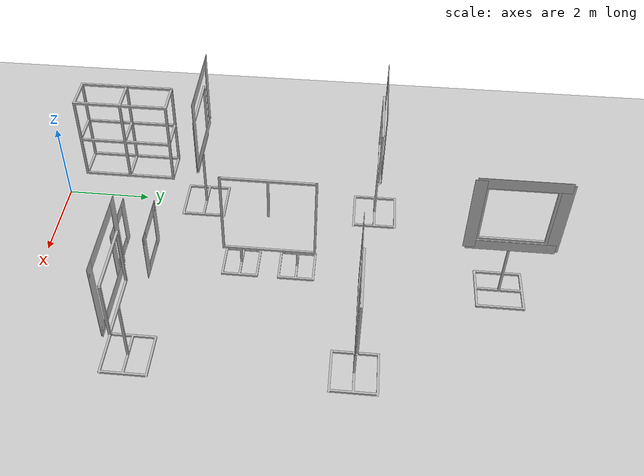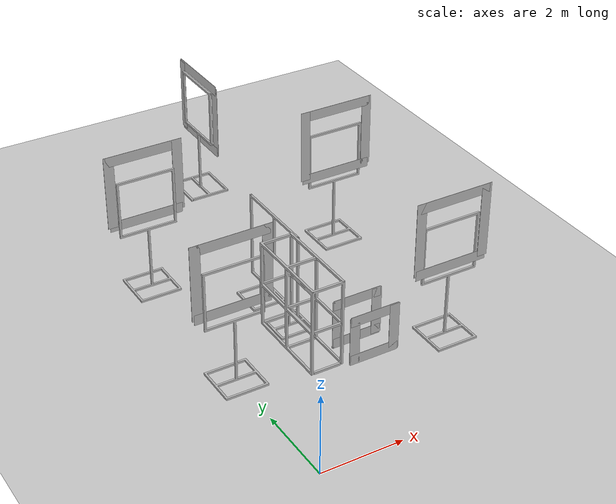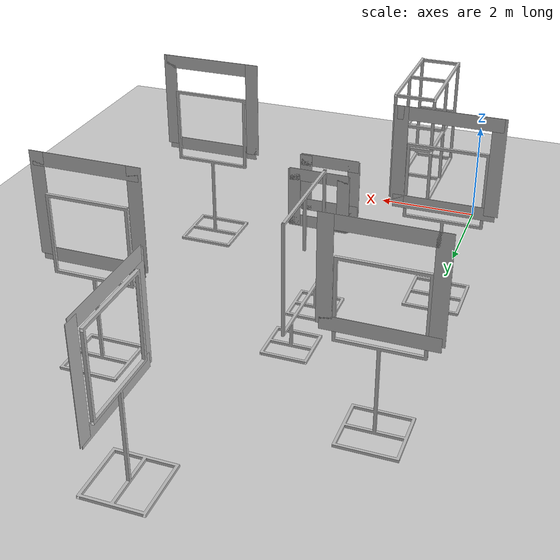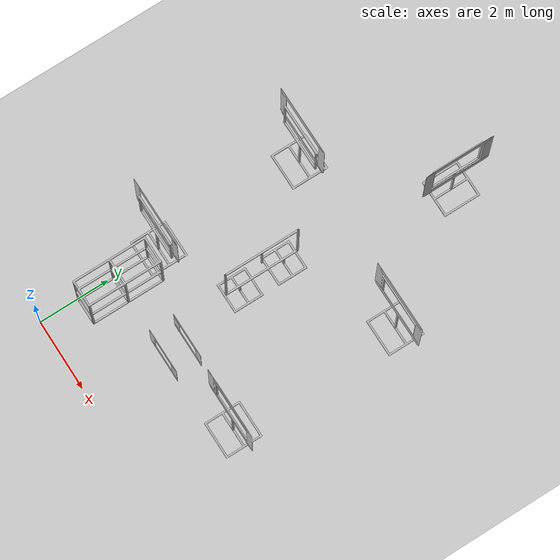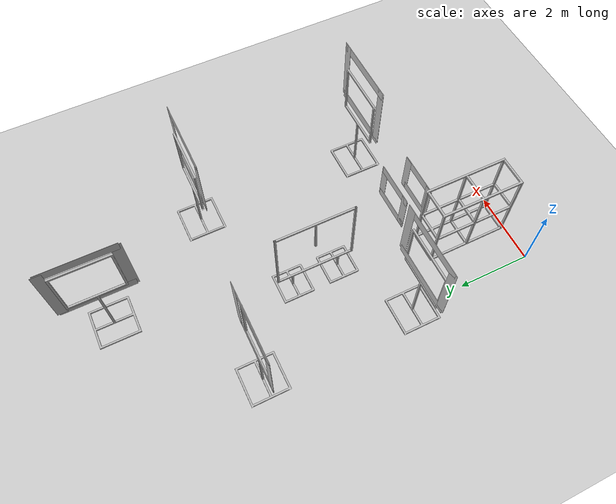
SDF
<sdf version="1.6">
 <world name="default">
  <light name="sun" type="directional">
   <pose>0 0 10 0 -0 0</pose>
   <diffuse>0.8 0.8 0.8 1</diffuse>
   <specular>0.1 0.1 0.1 1</specular>
   <attenuation>
    <range>1000</range>
    <constant>0.9</constant>
    <linear>0.01</linear>
    <quadratic>0.001</quadratic>
   </attenuation>
   <direction>-0.5 0.5 -1</direction>
  </light>
  <model name="ground_plane">
   <static>1</static>
   <link name="link">
    <collision name="collision">
     <geometry><plane><normal>0 0 1</normal><size>100 100</size></plane></geometry>
     <surface><friction><ode><mu>100</mu><mu2>50</mu2></ode></friction></surface>
    </collision>
    <visual name="visual">
     <cast_shadows>0</cast_shadows>
     <geometry><plane><normal>0 0 1</normal><size>100 100</size></plane></geometry>
     <material>
      <script><uri>file://media/materials/scripts/gazebo.material</uri><name>Gazebo/Grey</name></script>
     </material>
    </visual>
   </link>
  </model>
  <gravity>0 0 -9.8</gravity>
  <magnetic_field>6e-06 2.3e-05 -4.2e-05</magnetic_field>
  <atmosphere type="adiabatic"/>
  <physics name="default_physics" default="0" type="ode">
   <max_step_size>0.001</max_step_size>
   <real_time_factor>1</real_time_factor>
   <real_time_update_rate>1000</real_time_update_rate>
  </physics>
  <scene><ambient>0.4 0.4 0.4 1</ambient><background>0.7 0.7 0.7 1</background><shadows>1</shadows></scene>
  <spherical_coordinates>
   <surface_model>EARTH_WGS84</surface_model>
   <latitude_deg>51.9906361</latitude_deg>
   <longitude_deg>4.3767874</longitude_deg>
   <elevation>45.110</elevation>
   <heading_deg>180</heading_deg>
  </spherical_coordinates>
  <model name="paper_back0">
   <pose>0 3.55 1.9 0 0 0</pose>
   <static>true</static>
   <link name="link">
    <collision name="collision"><geometry><box><size>0.1 0.01 0.1</size></box></geometry></collision>
    <visual name="visual"><geometry><box><size>1.85 0.01 0.25</size></box></geometry></visual>
   </link>
  </model>
  <model name="paper_back1">
   <pose>0.85 3.55 2.8 0 1.57 0</pose>
   <static>true</static>
   <link name="link">
    <collision name="collision"><geometry><box><size>0.1 0.01 0.1</size></box></geometry></collision>
    <visual name="visual"><geometry><box><size>1.85 0.01 0.25</size></box></geometry></visual>
   </link>
  </model>
  <model name="paper_back2">
   <pose>-0.85 3.55 2.8 0 1.57 0</pose>
   <static>true</static>
   <link name="link">
    <collision name="collision"><geometry><box><size>0.1 0.01 0.1</size></box></geometry></collision>
    <visual name="visual"><geometry><box><size>1.85 0.01 0.25</size></box></geometry></visual>
   </link>
  </model>
  <model name="paper_back3">
   <pose>0 3.55 3.6 0 0 0</pose>
   <static>true</static>
   <link name="link">
    <collision name="collision"><geometry><box><size>0.1 0.01 0.1</size></box></geometry></collision>
    <visual name="visual"><geometry><box><size>1.85 0.01 0.25</size></box></geometry></visual>
   </link>
  </model>
  <model name="paper_back0_2">
   <pose>0 7.75 1.9 0 0 0</pose>
   <static>true</static>
   <link name="link">
    <collision name="collision"><geometry><box><size>0.1 0.01 0.1</size></box></geometry></collision>
    <visual name="visual"><geometry><box><size>1.85 0.01 0.25</size></box></geometry></visual>
   </link>
  </model>
  <model name="paper_back1_2">
   <pose>0.85 7.75 2.8 0 1.57 0</pose>
   <static>true</static>
   <link name="link">
    <collision name="collision"><geometry><box><size>0.1 0.01 0.1</size></box></geometry></collision>
    <visual name="visual"><geometry><box><size>1.85 0.01 0.25</size></box></geometry></visual>
   </link>
  </model>
  <model name="paper_back2_2">
   <pose>-0.85 7.75 2.8 0 1.57 0</pose>
   <static>true</static>
   <link name="link">
    <collision name="collision"><geometry><box><size>0.1 0.01 0.1</size></box></geometry></collision>
    <visual name="visual"><geometry><box><size>1.85 0.01 0.25</size></box></geometry></visual>
   </link>
  </model>
  <model name="paper_back3_2">
   <pose>0 7.75 3.6 0 0 0</pose>
   <static>true</static>
   <link name="link">
    <collision name="collision"><geometry><box><size>0.1 0.01 0.1</size></box></geometry></collision>
    <visual name="visual"><geometry><box><size>1.85 0.01 0.25</size></box></geometry></visual>
   </link>
  </model>
  <model name="paper_back0_3">
   <pose>2.8 10.45 1.95 0 0 1.57</pose>
   <static>true</static>
   <link name="link">
    <collision name="collision"><geometry><box><size>0.1 0.01 0.1</size></box></geometry></collision>
    <visual name="visual"><geometry><box><size>1.85 0.01 0.25</size></box></geometry></visual>
   </link>
  </model>
  <model name="paper_back1_3">
   <pose>2.8 11.3 2.8 0 1.57 1.57</pose>
   <static>true</static>
   <link name="link">
    <collision name="collision"><geometry><box><size>0.1 0.01 0.1</size></box></geometry></collision>
    <visual name="visual"><geometry><box><size>1.85 0.01 0.25</size></box></geometry></visual>
   </link>
  </model>
  <model name="paper_back2_3">
   <pose>2.8 9.6 2.8 0 1.57 1.57</pose>
   <static>true</static>
   <link name="link">
    <collision name="collision"><geometry><box><size>0.1 0.01 0.1</size></box></geometry></collision>
    <visual name="visual"><geometry><box><size>1.85 0.01 0.25</size></box></geometry></visual>
   </link>
  </model>
  <model name="paper_back3_3">
   <pose>2.8 10.45 3.65 0 0 1.57</pose>
   <static>true</static>
   <link name="link">
    <collision name="collision"><geometry><box><size>0.1 0.01 0.1</size></box></geometry></collision>
    <visual name="visual"><geometry><box><size>1.85 0.01 0.25</size></box></geometry></visual>
   </link>
  </model>
  <model name="paper_back0_4">
   <pose>4.9 7.35 1.9 0 0 0</pose>
   <static>true</static>
   <link name="link">
    <collision name="collision"><geometry><box><size>0.1 0.01 0.1</size></box></geometry></collision>
    <visual name="visual"><geometry><box><size>1.85 0.01 0.25</size></box></geometry></visual>
   </link>
  </model>
  <model name="paper_back1_4">
   <pose>5.75 7.35 2.8 0 1.57 0</pose>
   <static>true</static>
   <link name="link">
    <collision name="collision"><geometry><box><size>0.1 0.01 0.1</size></box></geometry></collision>
    <visual name="visual"><geometry><box><size>1.85 0.01 0.25</size></box></geometry></visual>
   </link>
  </model>
  <model name="paper_back2_4">
   <pose>4.05 7.35 2.8 0 1.57 0</pose>
   <static>true</static>
   <link name="link">
    <collision name="collision"><geometry><box><size>0.1 0.01 0.1</size></box></geometry></collision>
    <visual name="visual"><geometry><box><size>1.85 0.01 0.25</size></box></geometry></visual>
   </link>
  </model>
  <model name="paper_back3_4">
   <pose>4.9 7.35 3.6 0 0 0</pose>
   <static>true</static>
   <link name="link">
    <collision name="collision"><geometry><box><size>0.1 0.01 0.1</size></box></geometry></collision>
    <visual name="visual"><geometry><box><size>1.85 0.01 0.25</size></box></geometry></visual>
   </link>
  </model>
  <model name="paper_back0_5">
   <pose>4.9 2.55 1.9 0 0 0</pose>
   <static>true</static>
   <link name="link">
    <collision name="collision"><geometry><box><size>0.1 0.01 0.1</size></box></geometry></collision>
    <visual name="visual"><geometry><box><size>1.85 0.01 0.25</size></box></geometry></visual>
   </link>
  </model>
  <model name="paper_back1_5">
   <pose>5.75 2.55 2.8 0 1.57 0</pose>
   <static>true</static>
   <link name="link">
    <collision name="collision"><geometry><box><size>0.1 0.01 0.1</size></box></geometry></collision>
    <visual name="visual"><geometry><box><size>1.85 0.01 0.25</size></box></geometry></visual>
   </link>
  </model>
  <model name="paper_back2_5">
   <pose>4.05 2.55 2.8 0 1.57 0</pose>
   <static>true</static>
   <link name="link">
    <collision name="collision"><geometry><box><size>0.1 0.01 0.1</size></box></geometry></collision>
    <visual name="visual"><geometry><box><size>1.85 0.01 0.25</size></box></geometry></visual>
   </link>
  </model>
  <model name="paper_back3_5">
   <pose>4.9 2.55 3.6 0 0 0</pose>
   <static>true</static>
   <link name="link">
    <collision name="collision"><geometry><box><size>0.1 0.01 0.1</size></box></geometry></collision>
    <visual name="visual"><geometry><box><size>1.85 0.01 0.25</size></box></geometry></visual>
   </link>
  </model>
  <model name="paper_back0_6">
   <pose>2.6 2.05 0.7 0 0 0</pose>
   <static>true</static>
   <link name="link">
    <collision name="collision"><geometry><box><size>0.1 0.01 0.1</size></box></geometry></collision>
    <visual name="visual"><geometry><box><size>1.2 0.01 0.25</size></box></geometry></visual>
   </link>
  </model>
  <model name="paper_back1_6">
   <pose>3.1 2.05 1.2 0 1.57 0</pose>
   <static>true</static>
   <link name="link">
    <collision name="collision"><geometry><box><size>0.1 0.01 0.1</size></box></geometry></collision>
    <visual name="visual"><geometry><box><size>1.2 0.01 0.25</size></box></geometry></visual>
   </link>
  </model>
  <model name="paper_back2_6">
   <pose>2.1 2.05 1.2 0 1.57 0</pose>
   <static>true</static>
   <link name="link">
    <collision name="collision"><geometry><box><size>0.1 0.01 0.1</size></box></geometry></collision>
    <visual name="visual"><geometry><box><size>1.2 0.01 0.25</size></box></geometry></visual>
   </link>
  </model>
  <model name="paper_back3_6">
   <pose>2.6 2.05 1.7 0 0 0</pose>
   <static>true</static>
   <link name="link">
    <collision name="collision"><geometry><box><size>0.1 0.01 0.1</size></box></geometry></collision>
    <visual name="visual"><geometry><box><size>1.2 0.01 0.25</size></box></geometry></visual>
   </link>
  </model>
  <model name="paper_back0_62">
   <pose>2.6 2.75 0.7 0 0 0</pose>
   <static>true</static>
   <link name="link">
    <collision name="collision"><geometry><box><size>0.1 0.01 0.1</size></box></geometry></collision>
    <visual name="visual"><geometry><box><size>1.2 0.01 0.25</size></box></geometry></visual>
   </link>
  </model>
  <model name="paper_back1_62">
   <pose>3.1 2.75 1.2 0 1.57 0</pose>
   <static>true</static>
   <link name="link">
    <collision name="collision"><geometry><box><size>0.1 0.01 0.1</size></box></geometry></collision>
    <visual name="visual"><geometry><box><size>1.2 0.01 0.25</size></box></geometry></visual>
   </link>
  </model>
  <model name="paper_back2_62">
   <pose>2.1 2.75 1.2 0 1.57 0</pose>
   <static>true</static>
   <link name="link">
    <collision name="collision"><geometry><box><size>0.1 0.01 0.1</size></box></geometry></collision>
    <visual name="visual"><geometry><box><size>1.2 0.01 0.25</size></box></geometry></visual>
   </link>
  </model>
  <model name="paper_back3_62">
   <pose>2.6 2.75 1.7 0 0 0</pose>
   <static>true</static>
   <link name="link">
    <collision name="collision"><geometry><box><size>0.1 0.01 0.1</size></box></geometry></collision>
    <visual name="visual"><geometry><box><size>1.2 0.01 0.25</size></box></geometry></visual>
   </link>
  </model>
  <model name="gate 1">
   <static>1</static>
   <pose>0 3.5 0 0 -0 0</pose>
   <link name="dronerace gate 2018">
    <visual name="gate">
     <geometry>
      <mesh><uri>model://dronerace_gate_2018/normal_gate_2018.dae</uri><scale>1 1 1</scale></mesh>
     </geometry>
    </visual>
    <collision name="gate_collision">
     <geometry>
      <mesh><uri>model://dronerace_gate_2018/normal_gate_2018.dae</uri><scale>1 1 1</scale></mesh>
     </geometry>
    </collision>
   </link>
  </model>
  <model name="gate 2">
   <static>1</static>
   <pose>0 7.7 0 0 -0 0</pose>
   <link name="dronerace gate 2018">
    <visual name="gate">
     <geometry>
      <mesh><uri>model://dronerace_gate_2018/normal_gate_2018.dae</uri><scale>1 1 1</scale></mesh>
     </geometry>
    </visual>
    <collision name="gate_collision">
     <geometry>
      <mesh><uri>model://dronerace_gate_2018/normal_gate_2018.dae</uri><scale>1 1 1</scale></mesh>
     </geometry>
    </collision>
   </link>
  </model>
  <model name="gate 3">
   <static>1</static>
   <pose>2.75 10.45 0.5 0 0 1.57</pose>
   <link name="dronerace gate 2018">
    <visual name="gate">
     <geometry>
      <mesh><uri>model://dronerace_gate_2018/normal_gate_2018.dae</uri><scale>1 1 1</scale></mesh>
     </geometry>
    </visual>
    <collision name="gate_collision">
     <geometry>
      <mesh><uri>model://dronerace_gate_2018/normal_gate_2018.dae</uri><scale>1 1 1</scale></mesh>
     </geometry>
    </collision>
   </link>
  </model>
  <model name="gate 4">
   <static>1</static>
   <pose>4.9 7.4 0 0 -0 0</pose>
   <link name="dronerace gate 2018">
    <visual name="gate">
     <geometry>
      <mesh><uri>model://dronerace_gate_2018/normal_gate_2018.dae</uri><scale>1 1 1</scale></mesh>
     </geometry>
    </visual>
    <collision name="gate_collision">
     <geometry>
      <mesh><uri>model://dronerace_gate_2018/normal_gate_2018.dae</uri><scale>1 1 1</scale></mesh>
     </geometry>
    </collision>
   </link>
  </model>
  <model name="gate 5">
   <static>1</static>
   <pose>4.9 2.6 0 0 -0 0</pose>
   <link name="dronerace gate 2018">
    <visual name="gate">
     <geometry>
      <mesh><uri>model://dronerace_gate_2018/normal_gate_2018.dae</uri><scale>1 1 1</scale></mesh>
     </geometry>
    </visual>
    <collision name="gate_collision">
     <geometry>
      <mesh><uri>model://dronerace_gate_2018/normal_gate_2018.dae</uri><scale>1 1 1</scale></mesh>
     </geometry>
    </collision>
   </link>
  </model>
  <model name="gate 6">
   <static>1</static>
   <pose>1.1 2.0 1.7 0 -0 1.57</pose>
   <link name="dronerace gate 2018">
    <visual name="gate">
     <geometry>
      <mesh><uri>model://dronerace_junglegate_2018/jungle_gate_2018.dae</uri><scale>1 1 1</scale></mesh>
     </geometry>
    </visual>
    <collision name="gate_collision">
     <geometry>
      <mesh><uri>model://dronerace_junglegate_2018/jungle_gate_2018.dae</uri><scale>1 1 1</scale></mesh>
     </geometry>
    </collision>
   </link>
  </model>
  <model name="gate 7">
   <static>1</static>
   <pose>2.0 5.3 0 0 -0 1.57</pose>
   <link name="dronerace dynamic gate 2018">
    <visual name="gate">
     <geometry>
      <mesh><uri>model://dronerace_dynamicgate_2018/dynamic_gate_2018.dae</uri><scale>1 1 1</scale></mesh>
     </geometry>
    </visual>
    <collision name="gate_collision">
     <geometry>
      <mesh><uri>model://dronerace_dynamicgate_2018/dynamic_gate_2018.dae</uri><scale>1 1 1</scale></mesh>
     </geometry>
    </collision>
   </link>
  </model>
 </world>
</sdf>
